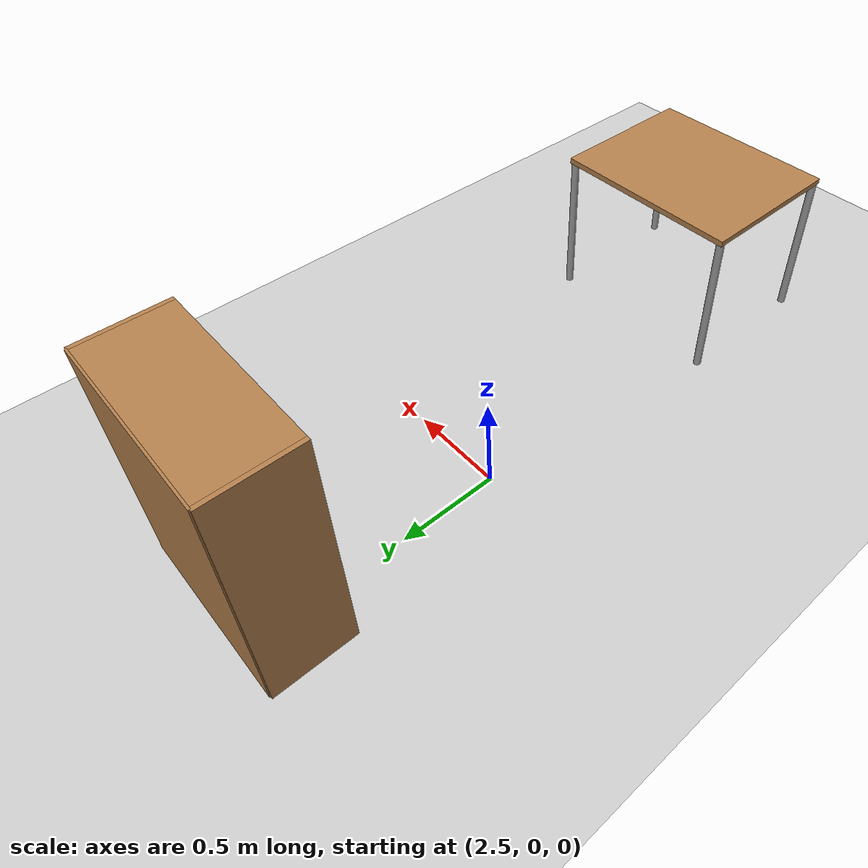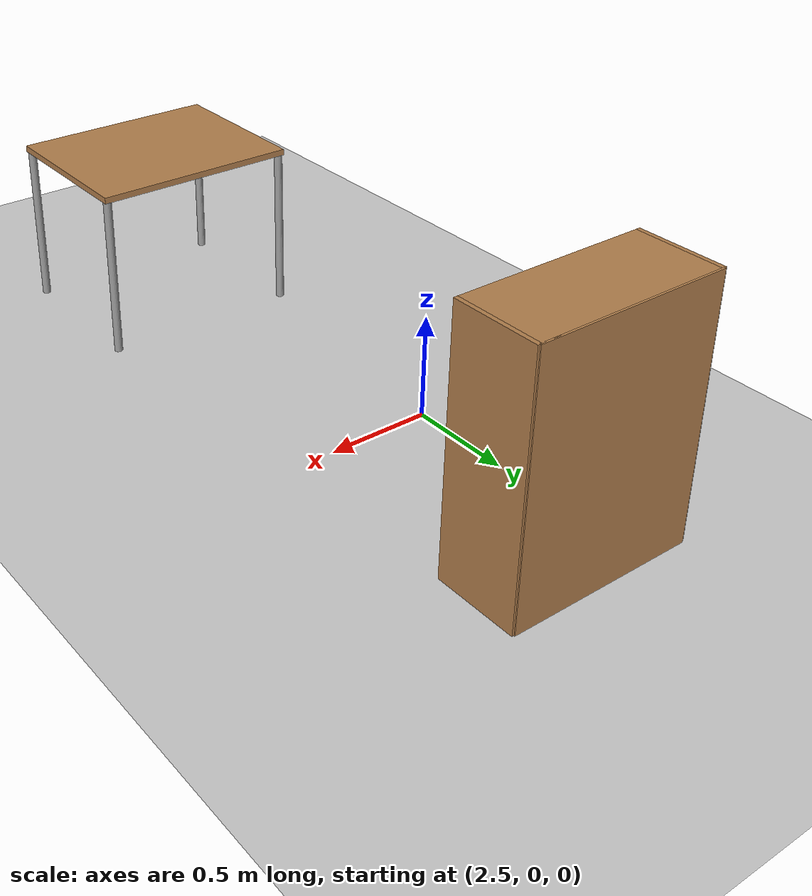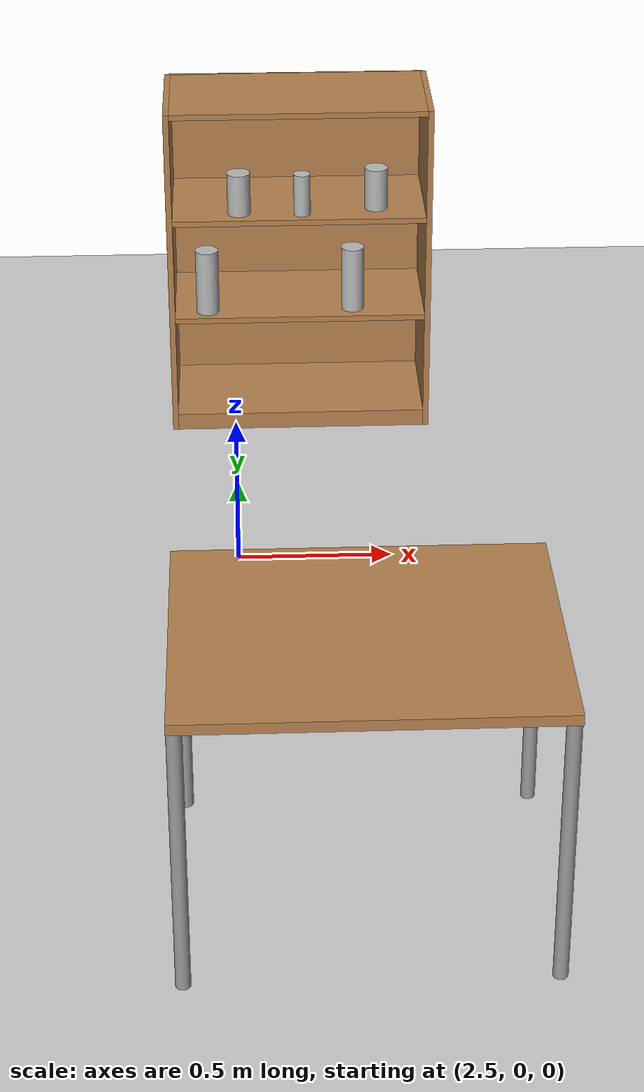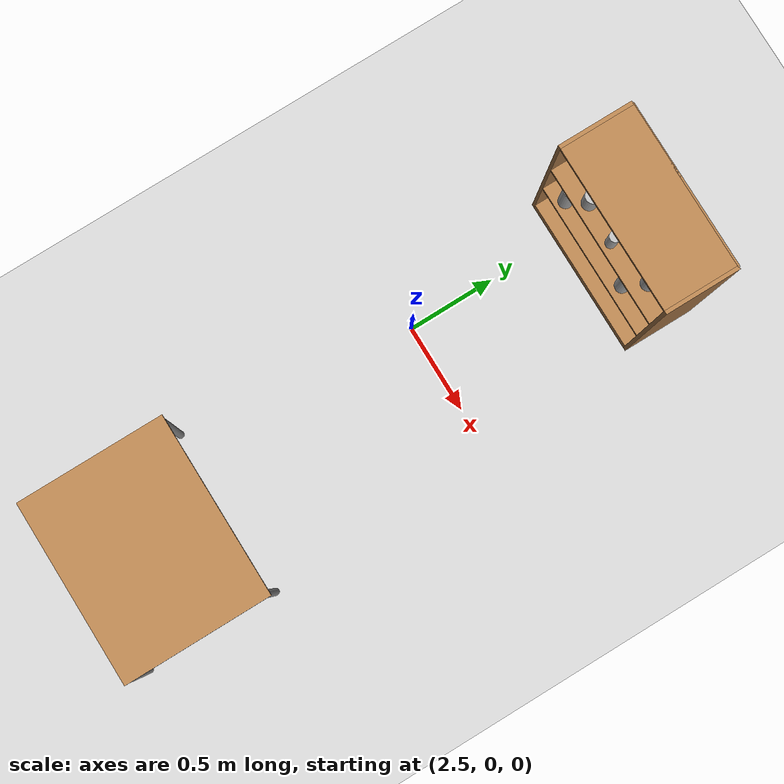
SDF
<sdf version="1.4">
 <world name="default">
  <physics type="ode">
   <gravity>0 0 -9.81</gravity>
   <ode>
    <solver><type>quick</type><iters>20</iters><sor>1</sor></solver>
    <constraints>
     <cfm>0</cfm>
     <erp>0.2</erp>
     <contact_max_correcting_vel>100</contact_max_correcting_vel>
     <contact_surface_layer>0</contact_surface_layer>
    </constraints>
   </ode>
   <real_time_update_rate>1000</real_time_update_rate>
   <max_step_size>0.001</max_step_size>
   <real_time_factor>1</real_time_factor>
  </physics>
  <light name="sun" type="directional">
   <pose>0 0 10 0 -0 0</pose>
   <diffuse>0.8 0.8 0.8 1</diffuse>
   <specular>0.2 0.2 0.2 1</specular>
   <attenuation>
    <range>1000</range>
    <constant>0.9</constant>
    <linear>0.01</linear>
    <quadratic>0.001</quadratic>
   </attenuation>
   <direction>-0.5 0.1 -0.9</direction>
  </light>
  <model name="ground_plane">
   <static>1</static>
   <link name="link">
    <collision name="collision">
     <geometry><plane><normal>0 0 1</normal><size>100 100</size></plane></geometry>
     <surface><friction><ode><mu>100</mu><mu2>50</mu2></ode></friction></surface>
    </collision>
    <visual name="visual">
     <cast_shadows>0</cast_shadows>
     <geometry><plane><normal>0 0 1</normal><size>100 100</size></plane></geometry>
     <material>
      <script><uri>file://media/materials/scripts/gazebo.material</uri><name>Gazebo/Grey</name></script>
     </material>
    </visual>
    <velocity_decay><linear>0</linear><angular>0</angular></velocity_decay>
   </link>
  </model>
  <scene><ambient>0.4 0.4 0.4 1</ambient><background>0.7 0.7 0.7 1</background><shadows>1</shadows></scene>
  <spherical_coordinates>
   <surface_model>EARTH_WGS84</surface_model>
   <latitude_deg>0</latitude_deg>
   <longitude_deg>0</longitude_deg>
   <elevation>0</elevation>
   <heading_deg>0</heading_deg>
  </spherical_coordinates>
  <model name="bookshelf">
   <static>1</static>
   <link name="link">
    <inertial><mass>1</mass></inertial>
    <collision name="back">
     <pose>0 0.005 0.6 0 -0 0</pose>
     <geometry><box><size>0.9 0.01 1.2</size></box></geometry>
    </collision>
    <visual name="visual1">
     <pose>0 0.005 0.6 0 -0 0</pose>
     <geometry><box><size>0.9 0.01 1.2</size></box></geometry>
     <material>
      <script><uri>file://media/materials/scripts/gazebo.material</uri><name>Gazebo/Wood</name></script>
     </material>
    </visual>
    <collision name="left_side">
     <pose>0.45 -0.195 0.6 0 -0 0</pose>
     <geometry><box><size>0.02 0.4 1.2</size></box></geometry>
    </collision>
    <visual name="visual2">
     <pose>0.45 -0.195 0.6 0 -0 0</pose>
     <geometry><box><size>0.02 0.4 1.2</size></box></geometry>
     <material>
      <script><uri>file://media/materials/scripts/gazebo.material</uri><name>Gazebo/Wood</name></script>
     </material>
    </visual>
    <collision name="right_side">
     <pose>-0.45 -0.195 0.6 0 -0 0</pose>
     <geometry><box><size>0.02 0.4 1.2</size></box></geometry>
    </collision>
    <visual name="visual3">
     <pose>-0.45 -0.195 0.6 0 -0 0</pose>
     <geometry><box><size>0.02 0.4 1.2</size></box></geometry>
     <material>
      <script><uri>file://media/materials/scripts/gazebo.material</uri><name>Gazebo/Wood</name></script>
     </material>
    </visual>
    <collision name="bottom">
     <pose>0 -0.195 0.03 0 -0 0</pose>
     <geometry><box><size>0.88 0.4 0.06</size></box></geometry>
    </collision>
    <visual name="visual4">
     <pose>0 -0.195 0.03 0 -0 0</pose>
     <geometry><box><size>0.88 0.4 0.06</size></box></geometry>
     <material>
      <script><uri>file://media/materials/scripts/gazebo.material</uri><name>Gazebo/Wood</name></script>
     </material>
    </visual>
    <collision name="top">
     <pose>0 -0.195 1.19 0 -0 0</pose>
     <geometry><box><size>0.88 0.4 0.02</size></box></geometry>
    </collision>
    <visual name="visual5">
     <pose>0 -0.195 1.19 0 -0 0</pose>
     <geometry><box><size>0.88 0.4 0.02</size></box></geometry>
     <material>
      <script><uri>file://media/materials/scripts/gazebo.material</uri><name>Gazebo/Wood</name></script>
     </material>
    </visual>
    <collision name="low_shelf">
     <pose>0 -0.195 0.43 0 -0 0</pose>
     <geometry><box><size>0.88 0.4 0.02</size></box></geometry>
    </collision>
    <visual name="visual6">
     <pose>0 -0.195 0.43 0 -0 0</pose>
     <geometry><box><size>0.88 0.4 0.02</size></box></geometry>
     <material>
      <script><uri>file://media/materials/scripts/gazebo.material</uri><name>Gazebo/Wood</name></script>
     </material>
    </visual>
    <collision name="high_shelf">
     <pose>0 -0.195 0.8 0 -0 0</pose>
     <geometry><box><size>0.88 0.4 0.02</size></box></geometry>
    </collision>
    <visual name="visual7">
     <pose>0 -0.195 0.8 0 -0 0</pose>
     <geometry><box><size>0.88 0.4 0.02</size></box></geometry>
     <material>
      <script><uri>file://media/materials/scripts/gazebo.material</uri><name>Gazebo/Wood</name></script>
     </material>
    </visual>
    <velocity_decay><linear>0</linear><angular>0</angular></velocity_decay>
   </link>
   <pose>2.72962 1.29427 0 0 -0 0</pose>
  </model>
  <model name="cocacola_0">
   <static>0</static>
   <link name="link">
    <inertial>
     <mass>0.25</mass>
     <inertia><ixx>0</ixx><ixy>0</ixy><ixz>0</ixz><iyy>0</iyy><iyz>0</iyz><izz>0</izz></inertia>
    </inertial>
    <collision name="collision">
     <pose>0 0 0.075 -3.14159 -0 0</pose>
     <geometry><cylinder><radius>0.04</radius><length>0.15</length></cylinder></geometry>
    </collision>
    <visual name="visual">
     <pose>0 0 0.075 -3.14159 -0 0</pose>
     <geometry><cylinder><radius>0.04</radius><length>0.15</length></cylinder></geometry>
     <material>
      <script>
       <uri>model://cocacola/material/scripts</uri>
       <uri>model://cocacola/material/textures</uri>
       <name>Custom/cocacola</name>
      </script>
     </material>
    </visual>
    <velocity_decay><linear>0</linear><angular>0</angular></velocity_decay>
   </link>
   <pose>2.52159 0.969442 0.810009 -0.000132 -0.000187 -7e-06</pose>
  </model>
  <model name="sprite_0">
   <static>0</static>
   <link name="link">
    <inertial>
     <mass>0.25</mass>
     <inertia><ixx>0</ixx><ixy>0</ixy><ixz>0</ixz><iyy>0</iyy><iyz>0</iyz><izz>0</izz></inertia>
    </inertial>
    <collision name="collision">
     <pose>0 0 0.075 -3.14159 -0 0</pose>
     <geometry><cylinder><radius>0.04</radius><length>0.15</length></cylinder></geometry>
    </collision>
    <visual name="visual">
     <pose>0 0 0.075 -3.14159 -0 0</pose>
     <geometry><cylinder><radius>0.04</radius><length>0.15</length></cylinder></geometry>
     <material>
      <script>
       <uri>model://sprite/material/scripts</uri>
       <uri>model://sprite/material/textures</uri>
       <name>Custom/sprite</name>
      </script>
     </material>
    </visual>
    <velocity_decay><linear>0</linear><angular>0</angular></velocity_decay>
   </link>
   <pose>3 1 0.810005 -0.000123 -8.8e-05 -9e-06</pose>
  </model>
  <model name="pringles_0">
   <static>0</static>
   <link name="link">
    <inertial>
     <mass>0.25</mass>
     <inertia><ixx>0</ixx><ixy>0</ixy><ixz>0</ixz><iyy>0</iyy><iyz>0</iyz><izz>0</izz></inertia>
    </inertial>
    <collision name="collision">
     <geometry><cylinder><radius>0.04</radius><length>0.235</length></cylinder></geometry>
    </collision>
    <visual name="visual">
     <geometry><cylinder><radius>0.04</radius><length>0.235</length></cylinder></geometry>
     <material>
      <script>
       <uri>model://pringles/material/scripts</uri>
       <uri>model://pringles/material/textures</uri>
       <name>Custom/pringles</name>
      </script>
     </material>
    </visual>
    <velocity_decay><linear>0</linear><angular>0</angular></velocity_decay>
   </link>
   <pose>2.40528 0.961558 0.557498 -0.000197 3.7e-05 -0.00018</pose>
  </model>
  <model name="coke_can_slim_0">
   <static>0</static>
   <link name="link">
    <inertial>
     <mass>0.15</mass>
     <inertia><ixx>2079.98</ixx><ixy>0</ixy><ixz>0</ixz><iyy>2079.98</iyy><iyz>0</iyz><izz>419.21</izz></inertia>
    </inertial>
    <collision name="collision">
     <geometry><cylinder><radius>0.029</radius><length>0.15</length></cylinder></geometry>
    </collision>
    <visual name="visual">
     <geometry><cylinder><radius>0.029</radius><length>0.15</length></cylinder></geometry>
     <material>
      <script>
       <uri>model://coke_can_slim/material/scripts</uri>
       <uri>model://coke_can_slim/material/textures</uri>
       <name>Custom/coke_can_slim</name>
      </script>
     </material>
    </visual>
    <velocity_decay><linear>0</linear><angular>0</angular></velocity_decay>
   </link>
   <pose>2.74032 0.952452 0.884999 -0.000249 0.000162 0.00024</pose>
  </model>
  <model name="pringles2_1">
   <static>0</static>
   <link name="link">
    <inertial>
     <mass>0.25</mass>
     <inertia><ixx>0</ixx><ixy>0</ixy><ixz>0</ixz><iyy>0</iyy><iyz>0</iyz><izz>0</izz></inertia>
    </inertial>
    <collision name="collision">
     <pose>0 0 0.12 -3.14159 -0 0</pose>
     <geometry><cylinder><radius>0.04</radius><length>0.235</length></cylinder></geometry>
    </collision>
    <visual name="visual">
     <pose>0 0 0.12 -3.14159 -0 0</pose>
     <geometry><cylinder><radius>0.04</radius><length>0.235</length></cylinder></geometry>
     <material>
      <script>
       <uri>model://pringles2/material/scripts</uri>
       <uri>model://pringles2/material/textures</uri>
       <name>Custom/pringles2</name>
      </script>
     </material>
    </visual>
    <velocity_decay><linear>0</linear><angular>0</angular></velocity_decay>
   </link>
   <pose>2.91756 0.971766 0.437498 3.4e-05 -0.000178 -1e-05</pose>
  </model>
  <model name="table">
   <static>1</static>
   <link name="link">
    <collision name="surface">
     <pose>0 0 0.8 0 -0 0</pose>
     <geometry><box><size>1 0.8 0.03</size></box></geometry>
    </collision>
    <visual name="visual1">
     <pose>0 0 0.8 0 -0 0</pose>
     <geometry><box><size>1 0.8 0.03</size></box></geometry>
     <material>
      <script><uri>file://media/materials/scripts/gazebo.material</uri><name>Gazebo/Wood</name></script>
     </material>
    </visual>
    <collision name="front_left_leg">
     <pose>0.48 0.38 0.4 0 -0 0</pose>
     <geometry><cylinder><radius>0.02</radius><length>0.8</length></cylinder></geometry>
    </collision>
    <visual name="front_left_leg">
     <pose>0.48 0.38 0.4 0 -0 0</pose>
     <geometry><cylinder><radius>0.02</radius><length>0.8</length></cylinder></geometry>
     <material>
      <script><uri>file://media/materials/scripts/gazebo.material</uri><name>Gazebo/Grey</name></script>
     </material>
    </visual>
    <collision name="front_right_leg">
     <pose>0.48 -0.38 0.4 0 -0 0</pose>
     <geometry><cylinder><radius>0.02</radius><length>0.8</length></cylinder></geometry>
    </collision>
    <visual name="front_right_leg">
     <pose>0.48 -0.38 0.4 0 -0 0</pose>
     <geometry><cylinder><radius>0.02</radius><length>0.8</length></cylinder></geometry>
     <material>
      <script><uri>file://media/materials/scripts/gazebo.material</uri><name>Gazebo/Grey</name></script>
     </material>
    </visual>
    <collision name="back_right_leg">
     <pose>-0.48 -0.38 0.4 0 -0 0</pose>
     <geometry><cylinder><radius>0.02</radius><length>0.8</length></cylinder></geometry>
    </collision>
    <visual name="back_right_leg">
     <pose>-0.48 -0.38 0.4 0 -0 0</pose>
     <geometry><cylinder><radius>0.02</radius><length>0.8</length></cylinder></geometry>
     <material>
      <script><uri>file://media/materials/scripts/gazebo.material</uri><name>Gazebo/Grey</name></script>
     </material>
    </visual>
    <collision name="back_left_leg">
     <pose>-0.48 0.38 0.4 0 -0 0</pose>
     <geometry><cylinder><radius>0.02</radius><length>0.8</length></cylinder></geometry>
    </collision>
    <visual name="back_left_leg">
     <pose>-0.48 0.38 0.4 0 -0 0</pose>
     <geometry><cylinder><radius>0.02</radius><length>0.8</length></cylinder></geometry>
     <material>
      <script><uri>file://media/materials/scripts/gazebo.material</uri><name>Gazebo/Grey</name></script>
     </material>
    </visual>
    <velocity_decay><linear>0</linear><angular>0</angular></velocity_decay>
   </link>
   <pose>2.82312 -1.70382 0 0 -0 0</pose>
  </model>
 </world>
</sdf>
